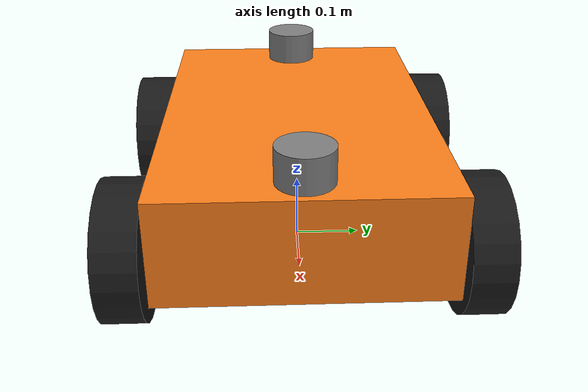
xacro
<?xml version="1.0"?>
<robot name="rover" xmlns:xacro="http://www.ros.org/wiki/xacro">

  <!-- ================= Dimensions ================= -->
  <xacro:property name="chassis_length"   value="0.60"/>
  <xacro:property name="chassis_width"    value="0.40"/>
  <xacro:property name="chassis_height"   value="0.15"/>
  <xacro:property name="chassis_mass"     value="15.0"/>
  <xacro:property name="chassis_z_offset" value="0.05"/>  <!-- chassis center height above the wheel axles -->

  <xacro:property name="wheel_radius" value="0.10"/>
  <xacro:property name="wheel_width"  value="0.06"/>
  <xacro:property name="wheel_mass"   value="1.0"/>
  <xacro:property name="wheelbase"    value="0.40"/>  <!-- front axle to rear axle -->
  <xacro:property name="wheel_gap"    value="0.01"/>  <!-- space between chassis side and wheel -->
  <!-- left wheel center to right wheel center -->
  <xacro:property name="track_width"  value="${chassis_width + wheel_width + 2*wheel_gap}"/>

  <xacro:property name="lidar_radius" value="0.04"/>
  <xacro:property name="lidar_height" value="0.05"/>
  <xacro:property name="lidar_mass"   value="0.2"/>
  <xacro:property name="lidar_inset"  value="0.05"/>  <!-- distance from chassis edge to lidar center -->
  <xacro:property name="lidar_fov"    value="${270*pi/180}"/>  <!-- horizontal field of view of each lidar -->

  <!-- ================= Materials ================= -->
  <material name="orange"><color rgba="1.0 0.5 0.1 1.0"/></material>
  <material name="black"><color rgba="0.1 0.1 0.1 1.0"/></material>
  <material name="grey"><color rgba="0.5 0.5 0.5 1.0"/></material>

  <!-- ================= Inertia helper ================= -->
  <!-- Cylinder whose axis is the link's z axis, rotated by rpy -->
  <xacro:macro name="cylinder_inertia" params="m r h rpy">
    <inertial>
      <origin xyz="0 0 0" rpy="${rpy}"/>
      <mass value="${m}"/>
      <inertia ixx="${m*(3*r*r+h*h)/12}" ixy="0" ixz="0"
               iyy="${m*(3*r*r+h*h)/12}" iyz="0"
               izz="${m*r*r/2}"/>
    </inertial>
  </xacro:macro>

  <!-- ================= Base ================= -->
  <!-- base_footprint: on the ground, directly under the robot center (Nav2 convention) -->
  <link name="base_footprint"/>

  <joint name="base_joint" type="fixed">
    <parent link="base_footprint"/>
    <child link="base_link"/>
    <origin xyz="0 0 ${wheel_radius}" rpy="0 0 0"/>
  </joint>

  <!-- base_link: robot center at wheel-axle height -->
  <link name="base_link">
    <visual>
      <origin xyz="0 0 ${chassis_z_offset}" rpy="0 0 0"/>
      <geometry><box size="${chassis_length} ${chassis_width} ${chassis_height}"/></geometry>
      <material name="orange"/>
    </visual>
    <collision>
      <origin xyz="0 0 ${chassis_z_offset}" rpy="0 0 0"/>
      <geometry><box size="${chassis_length} ${chassis_width} ${chassis_height}"/></geometry>
    </collision>
    <inertial>
      <origin xyz="0 0 ${chassis_z_offset}" rpy="0 0 0"/>
      <mass value="${chassis_mass}"/>
      <inertia ixx="${chassis_mass*(chassis_width**2+chassis_height**2)/12}" ixy="0" ixz="0"
               iyy="${chassis_mass*(chassis_length**2+chassis_height**2)/12}" iyz="0"
               izz="${chassis_mass*(chassis_length**2+chassis_width**2)/12}"/>
    </inertial>
  </link>

  <!-- ================= Wheels ================= -->
  <!-- x_reflect: 1 = front, -1 = rear.  y_reflect: 1 = left, -1 = right -->
  <xacro:macro name="wheel" params="prefix x_reflect y_reflect">
    <link name="${prefix}_wheel_link">
      <visual>
        <origin xyz="0 0 0" rpy="${pi/2} 0 0"/>
        <geometry><cylinder radius="${wheel_radius}" length="${wheel_width}"/></geometry>
        <material name="black"/>
      </visual>
      <collision>
        <origin xyz="0 0 0" rpy="${pi/2} 0 0"/>
        <geometry><cylinder radius="${wheel_radius}" length="${wheel_width}"/></geometry>
      </collision>
      <xacro:cylinder_inertia m="${wheel_mass}" r="${wheel_radius}" h="${wheel_width}" rpy="${pi/2} 0 0"/>
    </link>

    <!-- Continuous joint = motor. Its position/velocity in /joint_states is the simulated encoder. -->
    <joint name="${prefix}_wheel_joint" type="continuous">
      <parent link="base_link"/>
      <child link="${prefix}_wheel_link"/>
      <origin xyz="${x_reflect*wheelbase/2} ${y_reflect*track_width/2} 0" rpy="0 0 0"/>
      <axis xyz="0 1 0"/>
      <dynamics damping="0.01" friction="0.0"/>
    </joint>
  </xacro:macro>

  <xacro:wheel prefix="front_left"  x_reflect="1"  y_reflect="1"/>
  <xacro:wheel prefix="front_right" x_reflect="1"  y_reflect="-1"/>
  <xacro:wheel prefix="rear_left"   x_reflect="-1" y_reflect="1"/>
  <xacro:wheel prefix="rear_right"  x_reflect="-1" y_reflect="-1"/>

  <!-- ================= Lidars ================= -->
  <xacro:macro name="lidar" params="prefix x yaw">
    <link name="${prefix}_lidar_link">
      <visual>
        <geometry><cylinder radius="${lidar_radius}" length="${lidar_height}"/></geometry>
        <material name="grey"/>
      </visual>
      <collision>
        <geometry><cylinder radius="${lidar_radius}" length="${lidar_height}"/></geometry>
      </collision>
      <xacro:cylinder_inertia m="${lidar_mass}" r="${lidar_radius}" h="${lidar_height}" rpy="0 0 0"/>
    </link>

    <joint name="${prefix}_lidar_joint" type="fixed">
      <parent link="base_link"/>
      <child link="${prefix}_lidar_link"/>
      <origin xyz="${x} 0 ${chassis_z_offset + chassis_height/2 + lidar_height/2}" rpy="0 0 ${yaw}"/>
    </joint>
  </xacro:macro>

  <!-- Front lidar faces forward; rear lidar is rotated 180 degrees to face backward -->
  <xacro:lidar prefix="front" x="${chassis_length/2 - lidar_inset}"    yaw="0"/>
  <xacro:lidar prefix="rear"  x="${-(chassis_length/2 - lidar_inset)}" yaw="${pi}"/>

  <!-- ================= Gazebo plugins and sensors ================= -->
  <xacro:include filename="$(find rover_description)/urdf/rover.gazebo.xacro"/>

</robot>
